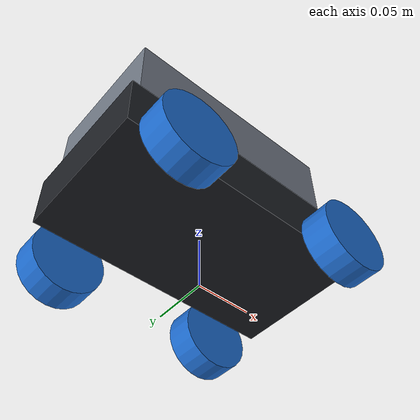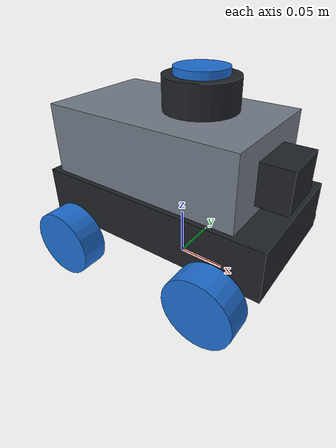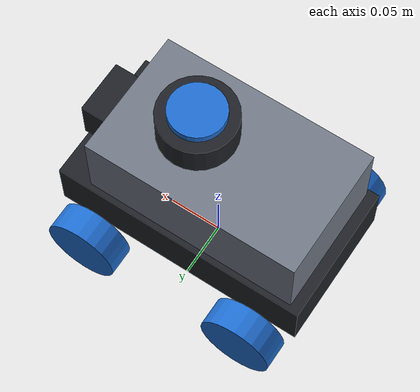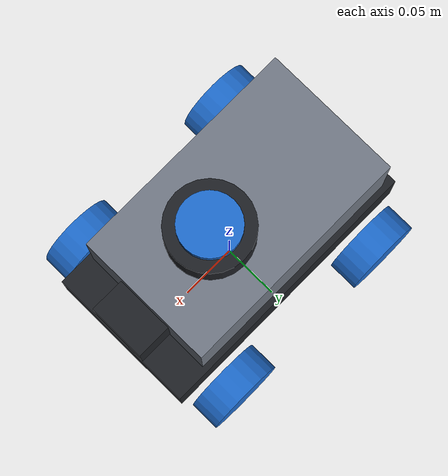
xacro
<?xml version="1.0"?>
<robot name="rosmaster_a1" xmlns:xacro="http://www.ros.org/wiki/xacro">

  <xacro:property name="wheel_radius" value="0.034"/>
  <xacro:property name="wheel_width" value="0.026"/>
  <xacro:property name="wheelbase" value="0.16"/>
  <xacro:property name="track_half" value="0.0845"/>
  <xacro:property name="max_steer" value="0.5"/>

  <material name="body_gray"><color rgba="0.45 0.48 0.53 1"/></material>
  <material name="dark"><color rgba="0.12 0.13 0.15 1"/></material>
  <material name="wheel_blue"><color rgba="0.12 0.43 0.82 1"/></material>
  <material name="light"><color rgba="0.85 0.87 0.9 1"/></material>

  <xacro:macro name="box_inertia" params="m x y z">
    <inertial>
      <mass value="${m}"/>
      <inertia ixx="${m*(y*y+z*z)/12}" ixy="0" ixz="0" iyy="${m*(x*x+z*z)/12}" iyz="0" izz="${m*(x*x+y*y)/12}"/>
    </inertial>
  </xacro:macro>

  <link name="base_footprint"/>

  <link name="base_link">
    <visual>
      <origin xyz="0 0 0.035"/>
      <geometry><box size="0.24 0.13 0.05"/></geometry>
      <material name="dark"/>
    </visual>
    <visual>
      <origin xyz="-0.01 0 0.095"/>
      <geometry><box size="0.20 0.12 0.07"/></geometry>
      <material name="body_gray"/>
    </visual>
    <visual>
      <origin xyz="0.105 0 0.09"/>
      <geometry><box size="0.03 0.05 0.04"/></geometry>
      <material name="dark"/>
    </visual>
    <collision>
      <origin xyz="0 0 0.07"/>
      <geometry><box size="0.24 0.13 0.12"/></geometry>
    </collision>
    <xacro:box_inertia m="1.2" x="0.24" y="0.13" z="0.12"/>
  </link>

  <joint name="base_joint" type="fixed">
    <parent link="base_footprint"/>
    <child link="base_link"/>
    <origin xyz="0 0 ${wheel_radius}"/>
  </joint>

  <link name="laser_link">
    <visual>
      <geometry><cylinder radius="0.035" length="0.03"/></geometry>
      <material name="dark"/>
    </visual>
    <visual>
      <origin xyz="0 0 0.018"/>
      <geometry><cylinder radius="0.025" length="0.008"/></geometry>
      <material name="wheel_blue"/>
    </visual>
    <xacro:box_inertia m="0.1" x="0.07" y="0.07" z="0.03"/>
  </link>

  <joint name="laser_joint" type="fixed">
    <parent link="base_link"/>
    <child link="laser_link"/>
    <origin xyz="0.02 0 0.148"/>
  </joint>

  <gazebo reference="laser_link">
    <sensor name="lidar" type="ray">
      <always_on>true</always_on>
      <visualize>true</visualize>
      <update_rate>10</update_rate>
      <ray>
        <scan>
          <horizontal>
            <samples>360</samples>
            <resolution>1</resolution>
            <min_angle>-3.14159</min_angle>
            <max_angle>3.14159</max_angle>
          </horizontal>
        </scan>
        <range>
          <min>0.12</min>
          <max>8.0</max>
          <resolution>0.01</resolution>
        </range>
        <noise>
          <type>gaussian</type>
          <mean>0.0</mean>
          <stddev>0.01</stddev>
        </noise>
      </ray>
      <plugin name="lidar_plugin" filename="libgazebo_ros_ray_sensor.so">
        <ros>
          <remapping>~/out:=scan</remapping>
        </ros>
        <output_type>sensor_msgs/LaserScan</output_type>
        <frame_name>laser_link</frame_name>
      </plugin>
    </sensor>
  </gazebo>

  <xacro:macro name="wheel" params="name">
    <link name="${name}_wheel">
      <visual>
        <origin rpy="1.5708 0 0"/>
        <geometry><cylinder radius="${wheel_radius}" length="${wheel_width}"/></geometry>
        <material name="wheel_blue"/>
      </visual>
      <collision>
        <origin rpy="1.5708 0 0"/>
        <geometry><cylinder radius="${wheel_radius}" length="${wheel_width}"/></geometry>
      </collision>
      <inertial>
        <mass value="0.08"/>
        <inertia ixx="0.000028" ixy="0" ixz="0" iyy="0.000046" iyz="0" izz="0.000028"/>
      </inertial>
    </link>
    <gazebo reference="${name}_wheel">
      <mu1>1.2</mu1>
      <mu2>1.2</mu2>
      <kp>1000000.0</kp>
      <kd>100.0</kd>
      <minDepth>0.001</minDepth>
      <material>Gazebo/Blue</material>
    </gazebo>
  </xacro:macro>

  <xacro:wheel name="rear_left"/>
  <xacro:wheel name="rear_right"/>
  <joint name="rear_left_wheel_joint" type="continuous">
    <parent link="base_link"/>
    <child link="rear_left_wheel"/>
    <origin xyz="${-wheelbase/2} ${track_half} 0"/>
    <axis xyz="0 1 0"/>
  </joint>
  <joint name="rear_right_wheel_joint" type="continuous">
    <parent link="base_link"/>
    <child link="rear_right_wheel"/>
    <origin xyz="${-wheelbase/2} ${-track_half} 0"/>
    <axis xyz="0 1 0"/>
  </joint>

  <xacro:macro name="steer_hub" params="side y">
    <link name="front_${side}_hub">
      <inertial>
        <mass value="0.03"/>
        <inertia ixx="0.000005" ixy="0" ixz="0" iyy="0.000005" iyz="0" izz="0.000005"/>
      </inertial>
    </link>
    <joint name="front_${side}_steer_joint" type="revolute">
      <parent link="base_link"/>
      <child link="front_${side}_hub"/>
      <origin xyz="${wheelbase/2} ${y} 0"/>
      <axis xyz="0 0 1"/>
      <limit lower="${-max_steer}" upper="${max_steer}" effort="10" velocity="5"/>
    </joint>
    <xacro:wheel name="front_${side}"/>
    <joint name="front_${side}_wheel_joint" type="continuous">
      <parent link="front_${side}_hub"/>
      <child link="front_${side}_wheel"/>
      <axis xyz="0 1 0"/>
    </joint>
  </xacro:macro>
  <xacro:steer_hub side="left" y="${track_half}"/>
  <xacro:steer_hub side="right" y="${-track_half}"/>

  <link name="steering_wheel">
    <inertial>
      <mass value="0.01"/>
      <inertia ixx="0.000001" ixy="0" ixz="0" iyy="0.000001" iyz="0" izz="0.000001"/>
    </inertial>
  </link>
  <joint name="steering_joint" type="revolute">
    <parent link="base_link"/>
    <child link="steering_wheel"/>
    <origin xyz="0.05 0 0.05"/>
    <axis xyz="1 0 0"/>
    <limit lower="-7.85" upper="7.85" effort="1" velocity="10"/>
  </joint>

  <gazebo reference="laser_link">
    <material>Gazebo/Black</material>
  </gazebo>

  <gazebo reference="base_link">
    <material>Gazebo/DarkGrey</material>
    <mu1>0.3</mu1>
    <mu2>0.3</mu2>
  </gazebo>

  <gazebo>
    <plugin name="ackermann_drive" filename="libgazebo_ros_ackermann_drive.so">
      <update_rate>100.0</update_rate>

      <front_left_joint>front_left_wheel_joint</front_left_joint>
      <front_right_joint>front_right_wheel_joint</front_right_joint>
      <rear_left_joint>rear_left_wheel_joint</rear_left_joint>
      <rear_right_joint>rear_right_wheel_joint</rear_right_joint>
      <left_steering_joint>front_left_steer_joint</left_steering_joint>
      <right_steering_joint>front_right_steer_joint</right_steering_joint>
      <steering_wheel_joint>steering_joint</steering_wheel_joint>

      <max_steer>${max_steer}</max_steer>
      <max_steering_angle>7.85</max_steering_angle>
      <max_speed>0.6</max_speed>

      <left_steering_pid_gain>1.0 0 0.01</left_steering_pid_gain>
      <left_steering_i_range>0 0</left_steering_i_range>
      <right_steering_pid_gain>1.0 0 0.01</right_steering_pid_gain>
      <right_steering_i_range>0 0</right_steering_i_range>
      <linear_velocity_pid_gain>0.15 0 0</linear_velocity_pid_gain>
      <linear_velocity_i_range>0 0</linear_velocity_i_range>

      <publish_odom>true</publish_odom>
      <publish_odom_tf>true</publish_odom_tf>
      <publish_wheel_tf>false</publish_wheel_tf>
      <publish_distance>false</publish_distance>
      <odometry_frame>odom</odometry_frame>
      <robot_base_frame>base_footprint</robot_base_frame>
    </plugin>

    <plugin name="joint_states" filename="libgazebo_ros_joint_state_publisher.so">
      <update_rate>30</update_rate>
      <joint_name>front_left_steer_joint</joint_name>
      <joint_name>front_right_steer_joint</joint_name>
      <joint_name>front_left_wheel_joint</joint_name>
      <joint_name>front_right_wheel_joint</joint_name>
      <joint_name>rear_left_wheel_joint</joint_name>
      <joint_name>rear_right_wheel_joint</joint_name>
      <joint_name>steering_joint</joint_name>
    </plugin>
  </gazebo>

</robot>
